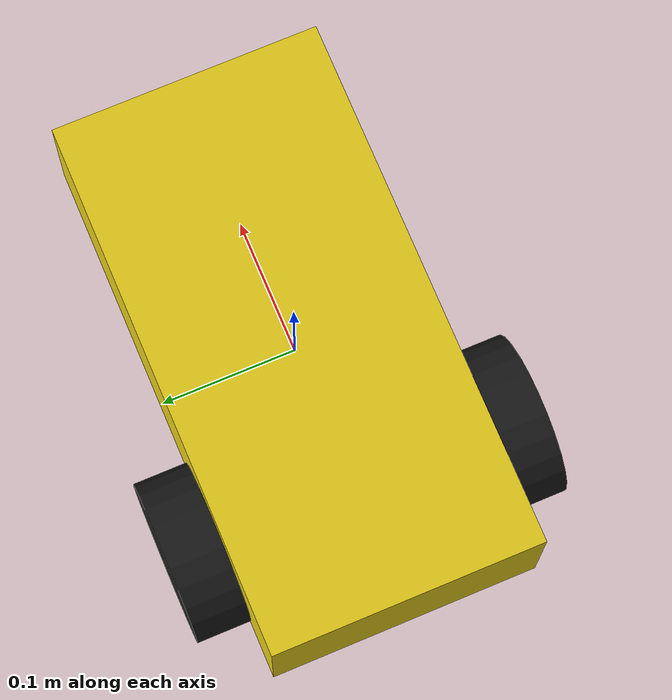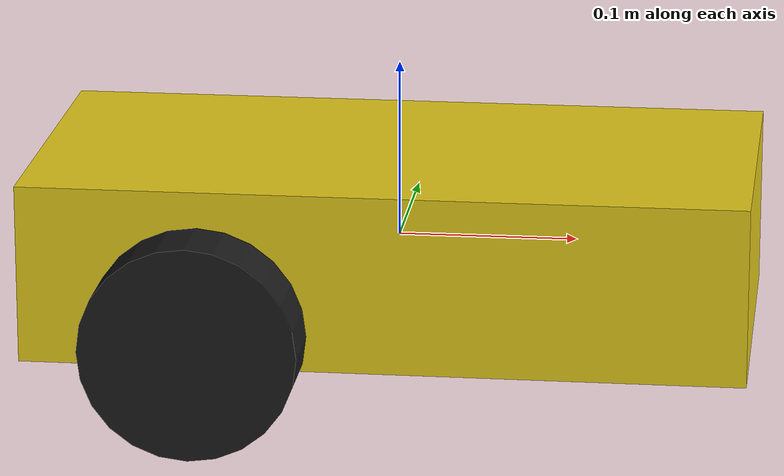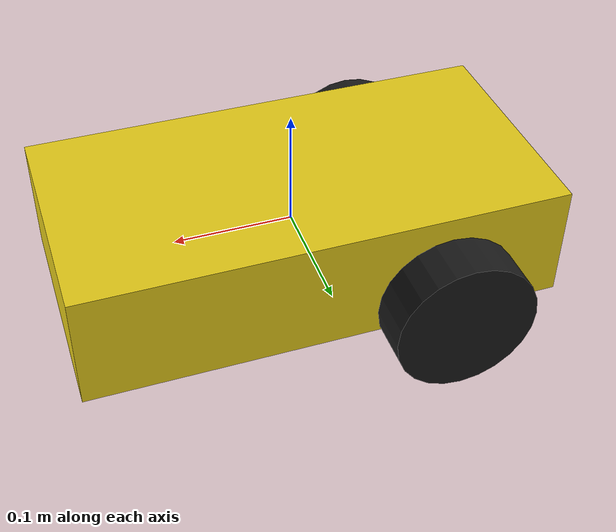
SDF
<?xml version="1.0" ?>
<!-- The same minimal box robot used in recipe 01, dropped into the arena. -->
<sdf version="1.10">
  <model name="robot">
    <link name="base_link">
      <inertial>
        <mass>1.0</mass>
        <inertia>
          <ixx>0.01</ixx><ixy>0</ixy><ixz>0</ixz>
          <iyy>0.01</iyy><iyz>0</iyz><izz>0.01</izz>
        </inertia>
      </inertial>
      <collision name="collision">
        <geometry><box><size>0.4 0.2 0.1</size></box></geometry>
      </collision>
      <visual name="visual">
        <geometry><box><size>0.4 0.2 0.1</size></box></geometry>
        <material>
          <ambient>0.9 0.8 0.1 1</ambient>
          <diffuse>0.9 0.8 0.1 1</diffuse>
        </material>
      </visual>
      <visual name="left_wheel">
        <pose>-0.1 0.12 -0.03 1.5708 0 0</pose>
        <geometry><cylinder><radius>0.06</radius><length>0.04</length></cylinder></geometry>
        <material><ambient>0.1 0.1 0.1 1</ambient><diffuse>0.1 0.1 0.1 1</diffuse></material>
      </visual>
      <visual name="right_wheel">
        <pose>-0.1 -0.12 -0.03 1.5708 0 0</pose>
        <geometry><cylinder><radius>0.06</radius><length>0.04</length></cylinder></geometry>
        <material><ambient>0.1 0.1 0.1 1</ambient><diffuse>0.1 0.1 0.1 1</diffuse></material>
      </visual>
    </link>
  </model>
</sdf>
